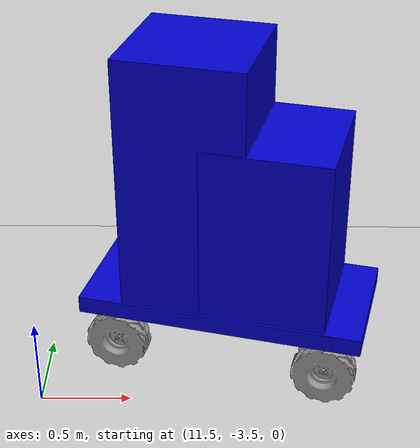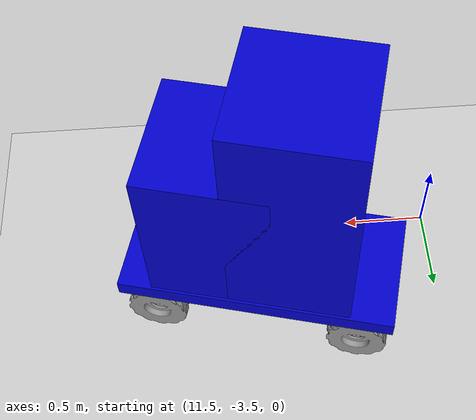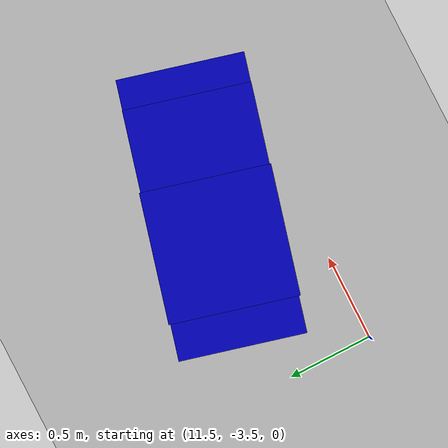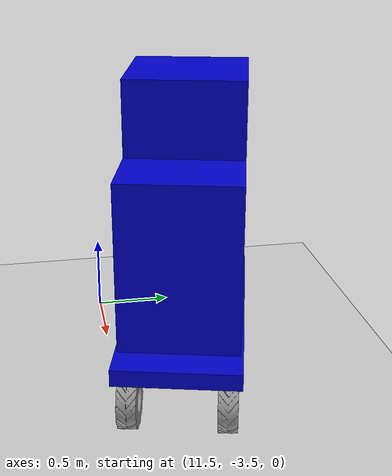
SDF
<sdf version="1.6">
 <world name="default">
  <light name="sun" type="directional">
   <pose>0 0 10 0 -0 0</pose>
   <diffuse>0.8 0.8 0.8 1</diffuse>
   <specular>0.2 0.2 0.2 1</specular>
   <attenuation>
    <range>1000</range>
    <constant>0.9</constant>
    <linear>0.01</linear>
    <quadratic>0.001</quadratic>
   </attenuation>
   <direction>-0.5 0.1 -0.9</direction>
  </light>
  <model name="ground_plane">
   <static>1</static>
   <link name="link">
    <collision name="collision">
     <geometry><plane><normal>0 0 1</normal><size>100 100</size></plane></geometry>
     <surface><friction><ode><mu>100</mu><mu2>50</mu2></ode></friction></surface>
    </collision>
    <visual name="visual">
     <cast_shadows>0</cast_shadows>
     <geometry><plane><normal>0 0 1</normal><size>100 100</size></plane></geometry>
     <material>
      <script><uri>file://media/materials/scripts/gazebo.material</uri><name>Gazebo/Grey</name></script>
     </material>
    </visual>
   </link>
  </model>
  <gravity>0 0 -9.8</gravity>
  <magnetic_field>6e-06 2.3e-05 -4.2e-05</magnetic_field>
  <atmosphere type="adiabatic"/>
  <physics name="default_physics" default="0" type="ode">
   <max_step_size>0.001</max_step_size>
   <real_time_factor>1</real_time_factor>
   <real_time_update_rate>1000</real_time_update_rate>
  </physics>
  <scene><ambient>0.4 0.4 0.4 1</ambient><background>0.7 0.7 0.7 1</background><shadows>1</shadows></scene>
  <spherical_coordinates>
   <surface_model>EARTH_WGS84</surface_model>
   <latitude_deg>0</latitude_deg>
   <longitude_deg>0</longitude_deg>
   <elevation>0</elevation>
   <heading_deg>0</heading_deg>
  </spherical_coordinates>
  <model name="podcar">
   <pose>12.5669 -3.04081 0.177754 5e-06 -1e-06 -0.253013</pose>
   <link name="base_link">
    <collision name="collision">
     <pose>0 0 0.25 0 -0 0</pose>
     <geometry><box><size>1.6 0.73 0.1</size></box></geometry>
    </collision>
    <inertial>
     <mass>33.855</mass>
     <pose>-0.085613 -0.00084 0.238145 0 -0 0</pose>
     <inertia>
      <ixx>2.2343</ixx>
      <ixy>-0.023642</ixy>
      <ixz>0.275174</ixz>
      <iyy>3.42518</iyy>
      <iyz>0.00239624</iyz>
      <izz>2.1241</izz>
     </inertia>
    </inertial>
    <visual name="chassis_visual">
     <pose>0 0 0.25 0 -0 0</pose>
     <geometry><box><size>1.6 0.73 0.1</size></box></geometry>
     <material><ambient>0 0 0.8 0</ambient><emissive>0 0 0 0</emissive></material>
    </visual>
    <visual name="front_canopy_visual">
     <pose>0.25 0 0.8 0 -0 0</pose>
     <geometry><box><size>0.7 0.7 1</size></box></geometry>
     <material><ambient>0 0 0.8 0</ambient><emissive>0 0 0 0</emissive></material>
    </visual>
    <visual name="rear_canopy_visual">
     <pose>-0.2 0 1 0 -0 0</pose>
     <geometry><box><size>0.7 0.7 1.5</size></box></geometry>
     <material><ambient>0 0 0.8 0</ambient><emissive>0 0 0 0</emissive></material>
    </visual>
   </link>
   <link name="back_left_wheel">
    <pose>-0.6 0.285475 0 0 -0 0</pose>
    <inertial>
     <mass>2.6357</mass>
     <inertia>
      <ixx>0.0246688</ixx>
      <ixy>0</ixy>
      <ixz>0</ixz>
      <iyy>0.0246688</iyy>
      <iyz>0</iyz>
      <izz>0.0441058</izz>
     </inertia>
    </inertial>
    <collision name="back_left_wheel_collision">
     <pose>0 0 0 -1.5707 0 0</pose>
     <geometry><cylinder><radius>0.17775</radius><length>0.1143</length></cylinder></geometry>
     <surface>
      <friction><ode><mu>100000</mu><mu2>100000</mu2><slip1>0</slip1><slip2>0</slip2></ode></friction>
     </surface>
    </collision>
    <visual name="back_left_wheel">
     <pose>0 0 0 -3.14159 0 0</pose>
     <geometry><mesh><uri>model://husky/meshes/wheel.stl</uri></mesh></geometry>
     <material><script><name>Gazebo/Grey</name><uri>__default__</uri></script></material>
    </visual>
   </link>
   <joint name="back_left_joint" type="revolute">
    <parent>base_link</parent>
    <child>back_left_wheel</child>
    <axis>
     <xyz>0 1 0</xyz>
     <use_parent_model_frame>1</use_parent_model_frame>
     <limit><lower>-1e+16</lower><upper>1e+16</upper></limit>
     <dynamics><spring_reference>0</spring_reference><spring_stiffness>0</spring_stiffness></dynamics>
    </axis>
    <physics><ode><limit><cfm>0</cfm><erp>0.9</erp></limit></ode></physics>
   </joint>
   <link name="back_right_wheel">
    <pose>-0.6 -0.285475 0 0 -0 0</pose>
    <inertial>
     <mass>2.6357</mass>
     <inertia>
      <ixx>0.0246688</ixx>
      <ixy>0</ixy>
      <ixz>0</ixz>
      <iyy>0.0246688</iyy>
      <iyz>0</iyz>
      <izz>0.0441058</izz>
     </inertia>
    </inertial>
    <collision name="back_right_wheel_collision">
     <pose>0 0 0 -1.5707 0 0</pose>
     <geometry><cylinder><radius>0.17775</radius><length>0.1143</length></cylinder></geometry>
     <surface>
      <friction><ode><mu>100000</mu><mu2>100000</mu2><slip1>0</slip1><slip2>0</slip2></ode></friction>
     </surface>
    </collision>
    <visual name="back_right_wheel">
     <pose>0 0 0 -3.14159 0 0</pose>
     <geometry><mesh><uri>model://husky/meshes/wheel.stl</uri></mesh></geometry>
     <material><script><name>Gazebo/Grey</name><uri>__default__</uri></script></material>
    </visual>
   </link>
   <joint name="back_right_joint" type="revolute">
    <parent>base_link</parent>
    <child>back_right_wheel</child>
    <axis>
     <xyz>0 1 0</xyz>
     <use_parent_model_frame>1</use_parent_model_frame>
     <limit><lower>-1e+16</lower><upper>1e+16</upper></limit>
     <dynamics><spring_reference>0</spring_reference><spring_stiffness>0</spring_stiffness></dynamics>
    </axis>
    <physics><ode><limit><cfm>0</cfm><erp>0.9</erp></limit></ode></physics>
   </joint>
   <link name="front_left_pivot">
    <pose>0.6 0.285475 0 0 -0 0</pose>
    <inertial>
     <mass>2.6357</mass>
     <inertia>
      <ixx>0.0246688</ixx>
      <ixy>0</ixy>
      <ixz>0</ixz>
      <iyy>0.0246688</iyy>
      <iyz>0</iyz>
      <izz>0.0441058</izz>
     </inertia>
    </inertial>
   </link>
   <joint name="front_left_pivot_joint" type="revolute">
    <parent>base_link</parent>
    <child>front_left_pivot</child>
    <axis>
     <xyz>0 0 1</xyz>
     <use_parent_model_frame>1</use_parent_model_frame>
     <limit><lower>-1e+16</lower><upper>1e+16</upper></limit>
     <dynamics><spring_reference>0</spring_reference><spring_stiffness>0</spring_stiffness></dynamics>
    </axis>
    <physics><ode><limit><cfm>0</cfm><erp>0.9</erp></limit></ode></physics>
   </joint>
   <link name="front_left_wheel">
    <pose>0.6 0.285475 0 0 -0 0</pose>
    <inertial>
     <mass>2.6357</mass>
     <inertia>
      <ixx>0.0246688</ixx>
      <ixy>0</ixy>
      <ixz>0</ixz>
      <iyy>0.0246688</iyy>
      <iyz>0</iyz>
      <izz>0.0441058</izz>
     </inertia>
    </inertial>
    <collision name="front_left_wheel_collision">
     <pose>0 0 0 -1.5707 0 0</pose>
     <geometry><cylinder><radius>0.17775</radius><length>0.1143</length></cylinder></geometry>
     <surface>
      <friction><ode><mu>100000</mu><mu2>100000</mu2><slip1>0</slip1><slip2>0</slip2></ode></friction>
     </surface>
    </collision>
    <visual name="front_left_wheel">
     <pose>0 0 0 -3.14159 0 0</pose>
     <geometry><mesh><uri>model://husky/meshes/wheel.stl</uri></mesh></geometry>
     <material><script><name>Gazebo/Grey</name><uri>__default__</uri></script></material>
    </visual>
   </link>
   <joint name="front_left_joint" type="revolute">
    <parent>front_left_pivot</parent>
    <child>front_left_wheel</child>
    <axis>
     <xyz>0 1 0</xyz>
     <use_parent_model_frame>1</use_parent_model_frame>
     <limit><lower>-1e+16</lower><upper>1e+16</upper></limit>
     <dynamics><spring_reference>0</spring_reference><spring_stiffness>0</spring_stiffness></dynamics>
    </axis>
    <physics><ode><limit><cfm>0</cfm><erp>0.9</erp></limit></ode></physics>
   </joint>
   <link name="front_right_pivot">
    <pose>0.6 -0.285475 0 0 -0 0</pose>
    <inertial>
     <mass>2.6357</mass>
     <inertia>
      <ixx>0.0246688</ixx>
      <ixy>0</ixy>
      <ixz>0</ixz>
      <iyy>0.0246688</iyy>
      <iyz>0</iyz>
      <izz>0.0441058</izz>
     </inertia>
    </inertial>
   </link>
   <joint name="front_right_pivot_joint" type="revolute">
    <parent>base_link</parent>
    <child>front_right_pivot</child>
    <axis>
     <xyz>0 0 1</xyz>
     <use_parent_model_frame>1</use_parent_model_frame>
     <limit><lower>-1e+16</lower><upper>1e+16</upper></limit>
     <dynamics><spring_reference>0</spring_reference><spring_stiffness>0</spring_stiffness></dynamics>
    </axis>
    <physics><ode><limit><cfm>0</cfm><erp>0.9</erp></limit></ode></physics>
   </joint>
   <link name="front_right_wheel">
    <pose>0.6 -0.285475 0 0 -0 0</pose>
    <inertial>
     <mass>2.6357</mass>
     <inertia>
      <ixx>0.0246688</ixx>
      <ixy>0</ixy>
      <ixz>0</ixz>
      <iyy>0.0246688</iyy>
      <iyz>0</iyz>
      <izz>0.0441058</izz>
     </inertia>
    </inertial>
    <collision name="front_right_wheel_collision">
     <pose>0 0 0 -1.5707 0 0</pose>
     <geometry><cylinder><radius>0.17775</radius><length>0.1143</length></cylinder></geometry>
     <surface>
      <friction><ode><mu>100000</mu><mu2>100000</mu2><slip1>0</slip1><slip2>0</slip2></ode></friction>
     </surface>
    </collision>
    <visual name="front_right_wheel">
     <pose>0 0 0 -3.14159 0 0</pose>
     <geometry><mesh><uri>model://husky/meshes/wheel.stl</uri></mesh></geometry>
     <material><script><name>Gazebo/Grey</name><uri>__default__</uri></script></material>
    </visual>
   </link>
   <joint name="front_right_joint" type="revolute">
    <parent>front_right_pivot</parent>
    <child>front_right_wheel</child>
    <axis>
     <xyz>0 1 0</xyz>
     <use_parent_model_frame>1</use_parent_model_frame>
     <limit><lower>-1e+16</lower><upper>1e+16</upper></limit>
     <dynamics><spring_reference>0</spring_reference><spring_stiffness>0</spring_stiffness></dynamics>
    </axis>
    <physics><ode><limit><cfm>0</cfm><erp>0.9</erp></limit></ode></physics>
   </joint>
  </model>
 </world>
</sdf>
